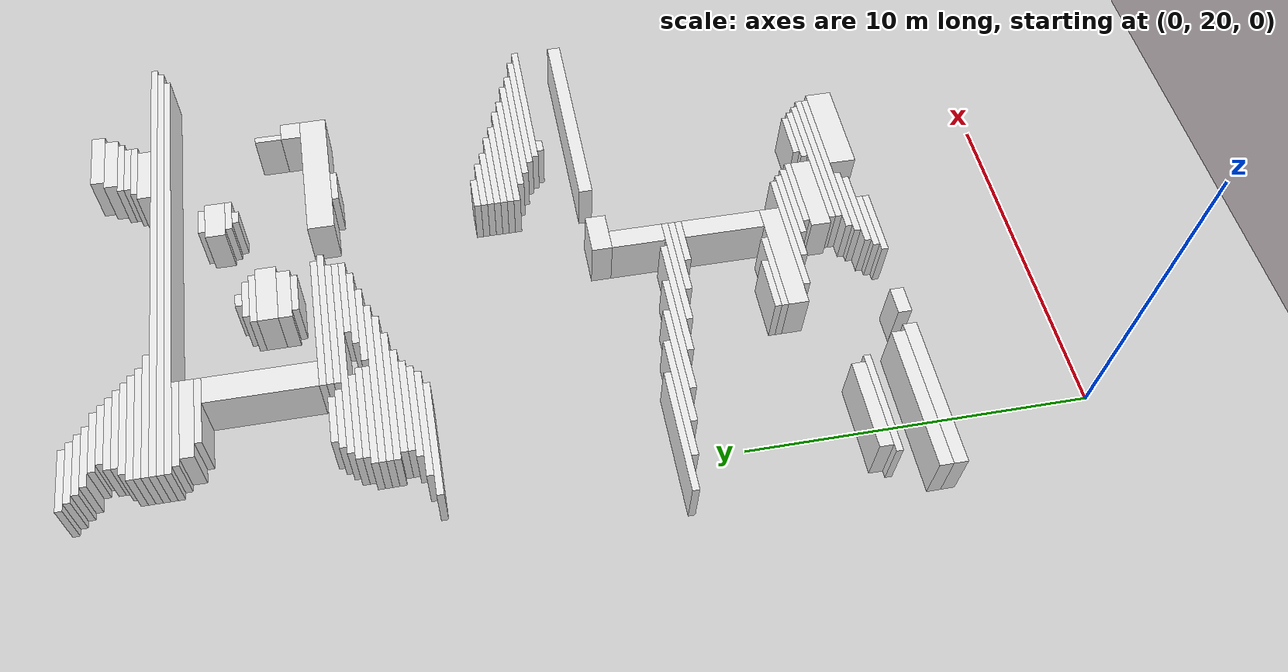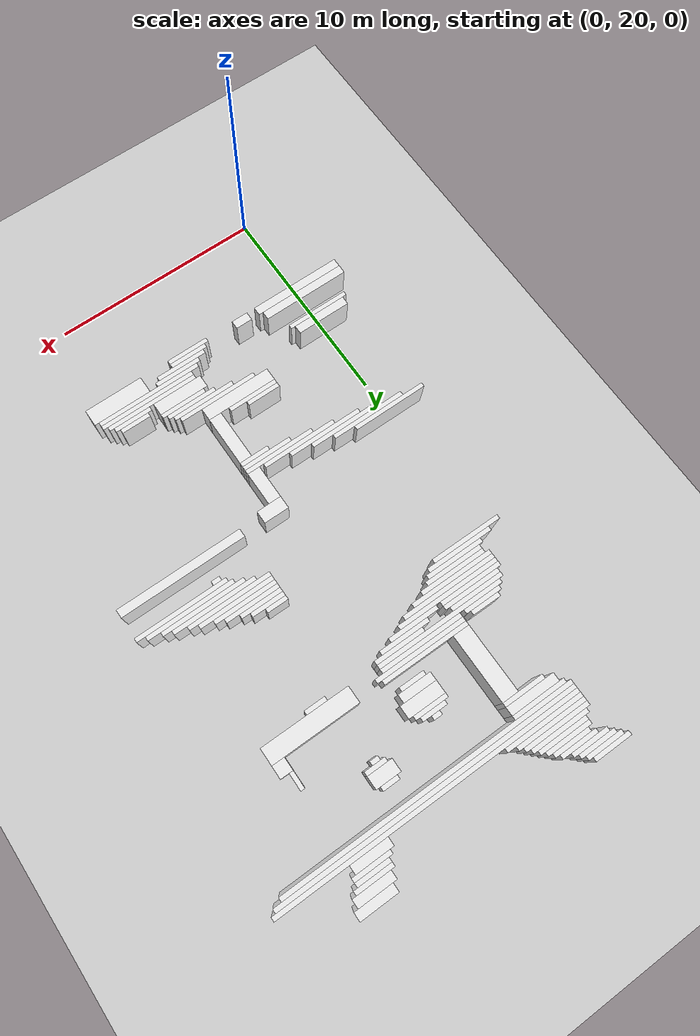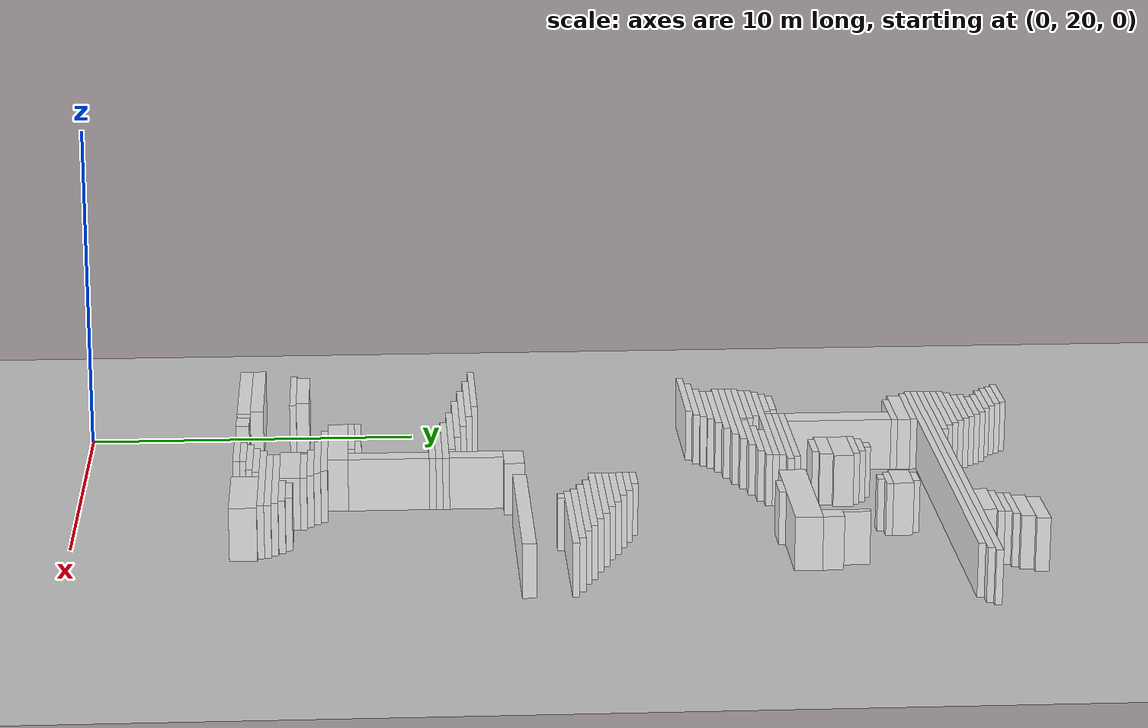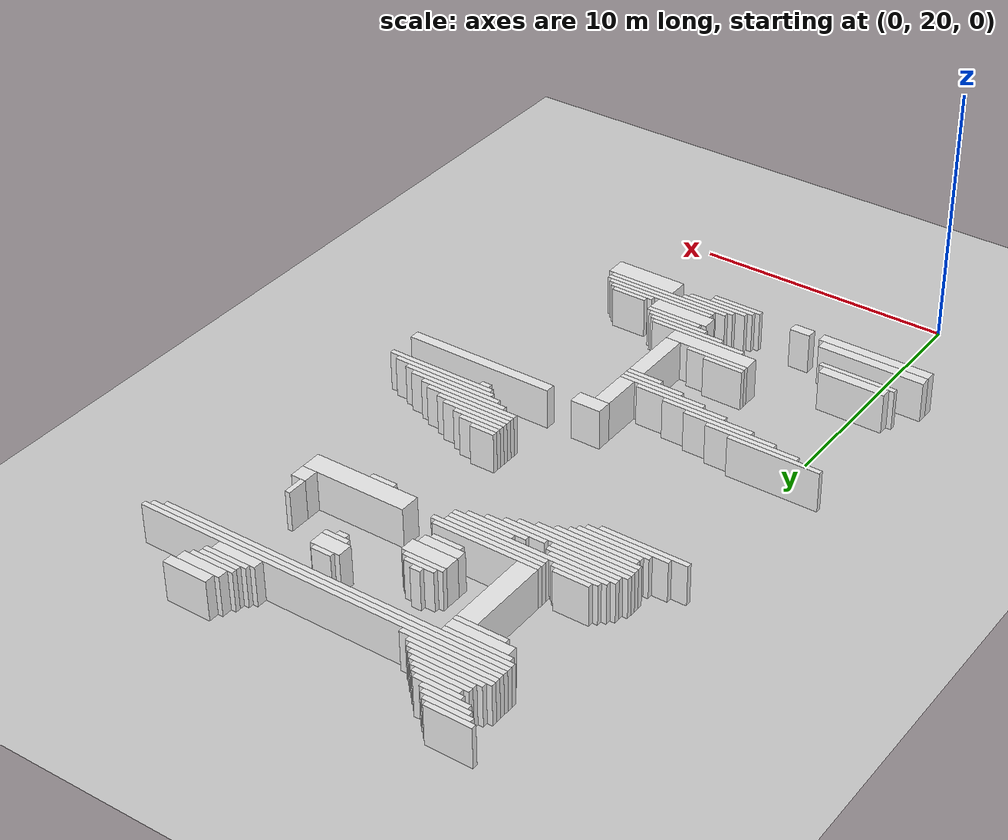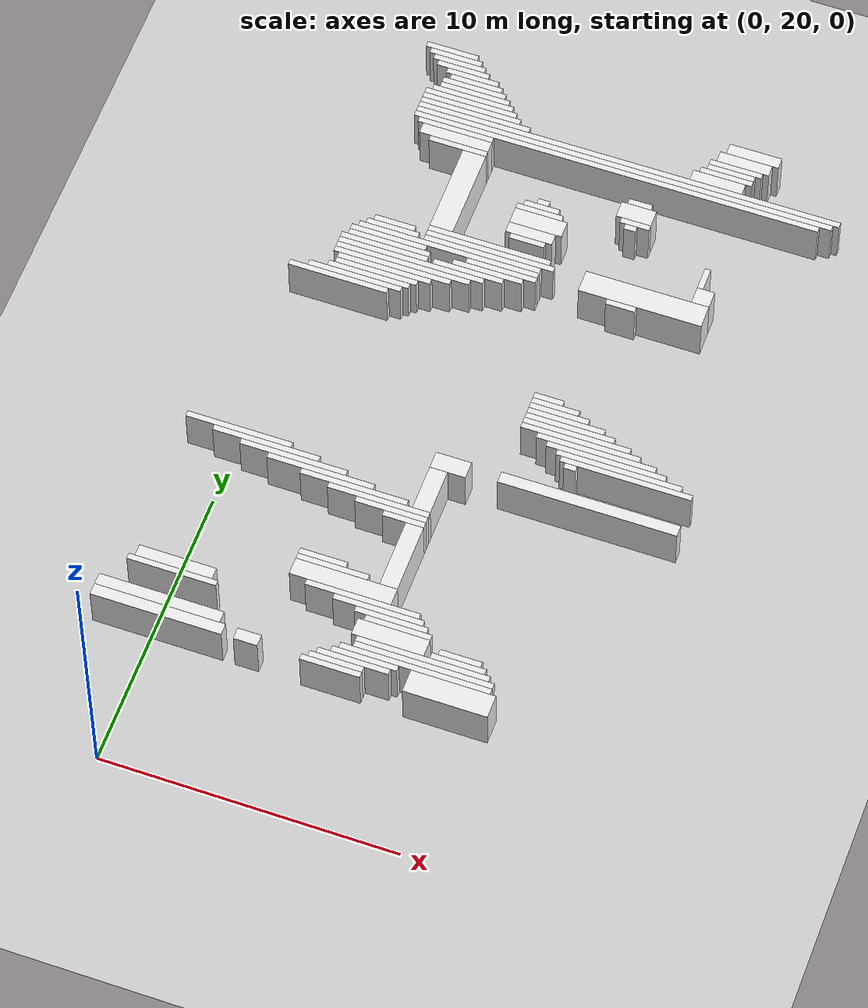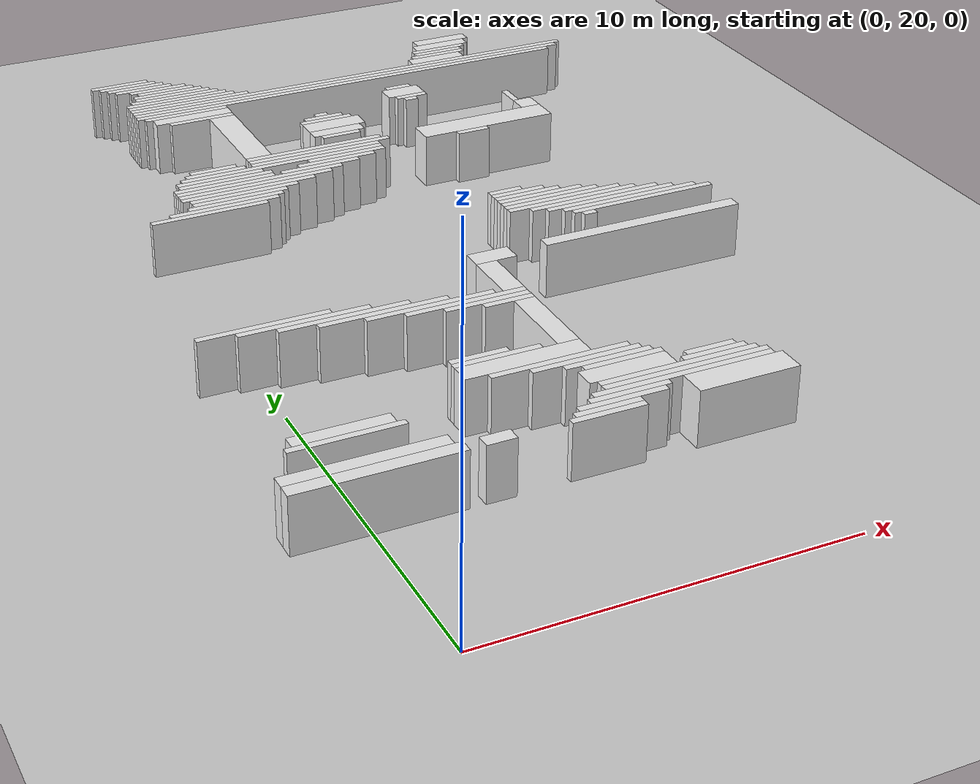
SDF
<sdf version="1.7">
 <world name="default">
  <model name="ground_plane">
   <static>1</static>
   <link name="link">
    <collision name="collision">
     <geometry><plane><normal>0 0 1</normal><size>120 120</size></plane></geometry>
    </collision>
    <visual name="visual">
     <geometry><plane><normal>0 0 1</normal><size>120 120</size></plane></geometry>
     <material>
      <script><uri>file://media/materials/scripts/gazebo.material</uri><name>Gazebo/Grey</name></script>
     </material>
    </visual>
   </link>
  </model>
  <model name="random_complex_02_model">
   <static>1</static>
   <link name="obs_3">
    <pose>1.5000 48.3000 0.8000 0 0 0</pose>
    <collision name="obs_3_col"><geometry><box><size>1.8000 0.2000 1.6000</size></box></geometry></collision>
    <visual name="obs_3_vis">
     <geometry><box><size>1.8000 0.2000 1.6000</size></box></geometry>
     <material>
      <script><uri>file://media/materials/scripts/gazebo.material</uri><name>Gazebo/White</name></script>
     </material>
    </visual>
   </link>
   <link name="obs_8">
    <pose>1.7000 48.1000 0.8000 0 0 0</pose>
    <collision name="obs_8_col"><geometry><box><size>1.8000 0.2000 1.6000</size></box></geometry></collision>
    <visual name="obs_8_vis">
     <geometry><box><size>1.8000 0.2000 1.6000</size></box></geometry>
     <material>
      <script><uri>file://media/materials/scripts/gazebo.material</uri><name>Gazebo/White</name></script>
     </material>
    </visual>
   </link>
   <link name="obs_15">
    <pose>1.9000 47.9000 0.8000 0 0 0</pose>
    <collision name="obs_15_col"><geometry><box><size>1.8000 0.2000 1.6000</size></box></geometry></collision>
    <visual name="obs_15_vis">
     <geometry><box><size>1.8000 0.2000 1.6000</size></box></geometry>
     <material>
      <script><uri>file://media/materials/scripts/gazebo.material</uri><name>Gazebo/White</name></script>
     </material>
    </visual>
   </link>
   <link name="obs_22">
    <pose>2.1000 47.7000 0.8000 0 0 0</pose>
    <collision name="obs_22_col"><geometry><box><size>1.8000 0.2000 1.6000</size></box></geometry></collision>
    <visual name="obs_22_vis">
     <geometry><box><size>1.8000 0.2000 1.6000</size></box></geometry>
     <material>
      <script><uri>file://media/materials/scripts/gazebo.material</uri><name>Gazebo/White</name></script>
     </material>
    </visual>
   </link>
   <link name="obs_25">
    <pose>12.3000 47.6000 0.8000 0 0 0</pose>
    <collision name="obs_25_col"><geometry><box><size>1.8000 0.4000 1.6000</size></box></geometry></collision>
    <visual name="obs_25_vis">
     <geometry><box><size>1.8000 0.4000 1.6000</size></box></geometry>
     <material>
      <script><uri>file://media/materials/scripts/gazebo.material</uri><name>Gazebo/White</name></script>
     </material>
    </visual>
   </link>
   <link name="obs_30">
    <pose>2.5000 47.5000 0.8000 0 0 0</pose>
    <collision name="obs_30_col"><geometry><box><size>1.8000 0.2000 1.6000</size></box></geometry></collision>
    <visual name="obs_30_vis">
     <geometry><box><size>1.8000 0.2000 1.6000</size></box></geometry>
     <material>
      <script><uri>file://media/materials/scripts/gazebo.material</uri><name>Gazebo/White</name></script>
     </material>
    </visual>
   </link>
   <link name="obs_37">
    <pose>2.7000 47.3000 0.8000 0 0 0</pose>
    <collision name="obs_37_col"><geometry><box><size>1.8000 0.2000 1.6000</size></box></geometry></collision>
    <visual name="obs_37_vis">
     <geometry><box><size>1.8000 0.2000 1.6000</size></box></geometry>
     <material>
      <script><uri>file://media/materials/scripts/gazebo.material</uri><name>Gazebo/White</name></script>
     </material>
    </visual>
   </link>
   <link name="obs_40">
    <pose>12.1000 47.2000 0.8000 0 0 0</pose>
    <collision name="obs_40_col"><geometry><box><size>1.8000 0.4000 1.6000</size></box></geometry></collision>
    <visual name="obs_40_vis">
     <geometry><box><size>1.8000 0.4000 1.6000</size></box></geometry>
     <material>
      <script><uri>file://media/materials/scripts/gazebo.material</uri><name>Gazebo/White</name></script>
     </material>
    </visual>
   </link>
   <link name="obs_44">
    <pose>2.7000 47.1000 0.8000 0 0 0</pose>
    <collision name="obs_44_col"><geometry><box><size>2.2000 0.2000 1.6000</size></box></geometry></collision>
    <visual name="obs_44_vis">
     <geometry><box><size>2.2000 0.2000 1.6000</size></box></geometry>
     <material>
      <script><uri>file://media/materials/scripts/gazebo.material</uri><name>Gazebo/White</name></script>
     </material>
    </visual>
   </link>
   <link name="obs_49">
    <pose>2.8000 46.9000 0.8000 0 0 0</pose>
    <collision name="obs_49_col"><geometry><box><size>2.4000 0.2000 1.6000</size></box></geometry></collision>
    <visual name="obs_49_vis">
     <geometry><box><size>2.4000 0.2000 1.6000</size></box></geometry>
     <material>
      <script><uri>file://media/materials/scripts/gazebo.material</uri><name>Gazebo/White</name></script>
     </material>
    </visual>
   </link>
   <link name="obs_50">
    <pose>11.9000 46.9000 0.8000 0 0 0</pose>
    <collision name="obs_50_col"><geometry><box><size>1.8000 0.2000 1.6000</size></box></geometry></collision>
    <visual name="obs_50_vis">
     <geometry><box><size>1.8000 0.2000 1.6000</size></box></geometry>
     <material>
      <script><uri>file://media/materials/scripts/gazebo.material</uri><name>Gazebo/White</name></script>
     </material>
    </visual>
   </link>
   <link name="obs_56">
    <pose>2.8000 46.7000 0.8000 0 0 0</pose>
    <collision name="obs_56_col"><geometry><box><size>2.8000 0.2000 1.6000</size></box></geometry></collision>
    <visual name="obs_56_vis">
     <geometry><box><size>2.8000 0.2000 1.6000</size></box></geometry>
     <material>
      <script><uri>file://media/materials/scripts/gazebo.material</uri><name>Gazebo/White</name></script>
     </material>
    </visual>
   </link>
   <link name="obs_57">
    <pose>11.8000 46.7000 0.8000 0 0 0</pose>
    <collision name="obs_57_col"><geometry><box><size>1.6000 0.2000 1.6000</size></box></geometry></collision>
    <visual name="obs_57_vis">
     <geometry><box><size>1.6000 0.2000 1.6000</size></box></geometry>
     <material>
      <script><uri>file://media/materials/scripts/gazebo.material</uri><name>Gazebo/White</name></script>
     </material>
    </visual>
   </link>
   <link name="obs_63">
    <pose>2.8000 46.5000 0.8000 0 0 0</pose>
    <collision name="obs_63_col"><geometry><box><size>3.2000 0.2000 1.6000</size></box></geometry></collision>
    <visual name="obs_63_vis">
     <geometry><box><size>3.2000 0.2000 1.6000</size></box></geometry>
     <material>
      <script><uri>file://media/materials/scripts/gazebo.material</uri><name>Gazebo/White</name></script>
     </material>
    </visual>
   </link>
   <link name="obs_64">
    <pose>11.7000 46.5000 0.8000 0 0 0</pose>
    <collision name="obs_64_col"><geometry><box><size>1.8000 0.2000 1.6000</size></box></geometry></collision>
    <visual name="obs_64_vis">
     <geometry><box><size>1.8000 0.2000 1.6000</size></box></geometry>
     <material>
      <script><uri>file://media/materials/scripts/gazebo.material</uri><name>Gazebo/White</name></script>
     </material>
    </visual>
   </link>
   <link name="obs_72">
    <pose>2.9000 46.3000 0.8000 0 0 0</pose>
    <collision name="obs_72_col"><geometry><box><size>3.4000 0.2000 1.6000</size></box></geometry></collision>
    <visual name="obs_72_vis">
     <geometry><box><size>3.4000 0.2000 1.6000</size></box></geometry>
     <material>
      <script><uri>file://media/materials/scripts/gazebo.material</uri><name>Gazebo/White</name></script>
     </material>
    </visual>
   </link>
   <link name="obs_76">
    <pose>11.5000 46.2000 0.8000 0 0 0</pose>
    <collision name="obs_76_col"><geometry><box><size>1.8000 0.4000 1.6000</size></box></geometry></collision>
    <visual name="obs_76_vis">
     <geometry><box><size>1.8000 0.4000 1.6000</size></box></geometry>
     <material>
      <script><uri>file://media/materials/scripts/gazebo.material</uri><name>Gazebo/White</name></script>
     </material>
    </visual>
   </link>
   <link name="obs_80">
    <pose>3.1000 46.1000 0.8000 0 0 0</pose>
    <collision name="obs_80_col"><geometry><box><size>3.8000 0.2000 1.6000</size></box></geometry></collision>
    <visual name="obs_80_vis">
     <geometry><box><size>3.8000 0.2000 1.6000</size></box></geometry>
     <material>
      <script><uri>file://media/materials/scripts/gazebo.material</uri><name>Gazebo/White</name></script>
     </material>
    </visual>
   </link>
   <link name="obs_89">
    <pose>8.5000 45.9000 0.8000 0 0 0</pose>
    <collision name="obs_89_col"><geometry><box><size>14.6000 0.2000 1.6000</size></box></geometry></collision>
    <visual name="obs_89_vis">
     <geometry><box><size>14.6000 0.2000 1.6000</size></box></geometry>
     <material>
      <script><uri>file://media/materials/scripts/gazebo.material</uri><name>Gazebo/White</name></script>
     </material>
    </visual>
   </link>
   <link name="obs_96">
    <pose>8.4000 45.7000 0.8000 0 0 0</pose>
    <collision name="obs_96_col"><geometry><box><size>14.4000 0.2000 1.6000</size></box></geometry></collision>
    <visual name="obs_96_vis">
     <geometry><box><size>14.4000 0.2000 1.6000</size></box></geometry>
     <material>
      <script><uri>file://media/materials/scripts/gazebo.material</uri><name>Gazebo/White</name></script>
     </material>
    </visual>
   </link>
   <link name="obs_103">
    <pose>8.2000 45.5000 0.8000 0 0 0</pose>
    <collision name="obs_103_col"><geometry><box><size>14.0000 0.2000 1.6000</size></box></geometry></collision>
    <visual name="obs_103_vis">
     <geometry><box><size>14.0000 0.2000 1.6000</size></box></geometry>
     <material>
      <script><uri>file://media/materials/scripts/gazebo.material</uri><name>Gazebo/White</name></script>
     </material>
    </visual>
   </link>
   <link name="obs_112">
    <pose>2.7000 45.3000 0.8000 0 0 0</pose>
    <collision name="obs_112_col"><geometry><box><size>2.6000 0.2000 1.6000</size></box></geometry></collision>
    <visual name="obs_112_vis">
     <geometry><box><size>2.6000 0.2000 1.6000</size></box></geometry>
     <material>
      <script><uri>file://media/materials/scripts/gazebo.material</uri><name>Gazebo/White</name></script>
     </material>
    </visual>
   </link>
   <link name="obs_127">
    <pose>2.8000 45.0000 0.8000 0 0 0</pose>
    <collision name="obs_127_col"><geometry><box><size>2.4000 0.4000 1.6000</size></box></geometry></collision>
    <visual name="obs_127_vis">
     <geometry><box><size>2.4000 0.4000 1.6000</size></box></geometry>
     <material>
      <script><uri>file://media/materials/scripts/gazebo.material</uri><name>Gazebo/White</name></script>
     </material>
    </visual>
   </link>
   <link name="obs_139">
    <pose>3.0000 44.7000 0.8000 0 0 0</pose>
    <collision name="obs_139_col"><geometry><box><size>2.0000 0.2000 1.6000</size></box></geometry></collision>
    <visual name="obs_139_vis">
     <geometry><box><size>2.0000 0.2000 1.6000</size></box></geometry>
     <material>
      <script><uri>file://media/materials/scripts/gazebo.material</uri><name>Gazebo/White</name></script>
     </material>
    </visual>
   </link>
   <link name="obs_147">
    <pose>9.4000 44.5000 0.8000 0 0 0</pose>
    <collision name="obs_147_col"><geometry><box><size>0.8000 0.2000 1.6000</size></box></geometry></collision>
    <visual name="obs_147_vis">
     <geometry><box><size>0.8000 0.2000 1.6000</size></box></geometry>
     <material>
      <script><uri>file://media/materials/scripts/gazebo.material</uri><name>Gazebo/White</name></script>
     </material>
    </visual>
   </link>
   <link name="obs_165">
    <pose>9.4000 44.1000 0.8000 0 0 0</pose>
    <collision name="obs_165_col"><geometry><box><size>1.2000 0.6000 1.6000</size></box></geometry></collision>
    <visual name="obs_165_vis">
     <geometry><box><size>1.2000 0.6000 1.6000</size></box></geometry>
     <material>
      <script><uri>file://media/materials/scripts/gazebo.material</uri><name>Gazebo/White</name></script>
     </material>
    </visual>
   </link>
   <link name="obs_178">
    <pose>9.5000 43.7000 0.8000 0 0 0</pose>
    <collision name="obs_178_col"><geometry><box><size>1.0000 0.2000 1.6000</size></box></geometry></collision>
    <visual name="obs_178_vis">
     <geometry><box><size>1.0000 0.2000 1.6000</size></box></geometry>
     <material>
      <script><uri>file://media/materials/scripts/gazebo.material</uri><name>Gazebo/White</name></script>
     </material>
    </visual>
   </link>
   <link name="obs_183">
    <pose>6.4000 43.5000 0.8000 0 0 0</pose>
    <collision name="obs_183_col"><geometry><box><size>0.4000 0.2000 1.6000</size></box></geometry></collision>
    <visual name="obs_183_vis">
     <geometry><box><size>0.4000 0.2000 1.6000</size></box></geometry>
     <material>
      <script><uri>file://media/materials/scripts/gazebo.material</uri><name>Gazebo/White</name></script>
     </material>
    </visual>
   </link>
   <link name="obs_184">
    <pose>9.4000 43.5000 0.8000 0 0 0</pose>
    <collision name="obs_184_col"><geometry><box><size>0.4000 0.2000 1.6000</size></box></geometry></collision>
    <visual name="obs_184_vis">
     <geometry><box><size>0.4000 0.2000 1.6000</size></box></geometry>
     <material>
      <script><uri>file://media/materials/scripts/gazebo.material</uri><name>Gazebo/White</name></script>
     </material>
    </visual>
   </link>
   <link name="obs_190">
    <pose>6.4000 43.3000 0.8000 0 0 0</pose>
    <collision name="obs_190_col"><geometry><box><size>1.2000 0.2000 1.6000</size></box></geometry></collision>
    <visual name="obs_190_vis">
     <geometry><box><size>1.2000 0.2000 1.6000</size></box></geometry>
     <material>
      <script><uri>file://media/materials/scripts/gazebo.material</uri><name>Gazebo/White</name></script>
     </material>
    </visual>
   </link>
   <link name="obs_198">
    <pose>6.4000 43.1000 0.8000 0 0 0</pose>
    <collision name="obs_198_col"><geometry><box><size>1.6000 0.2000 1.6000</size></box></geometry></collision>
    <visual name="obs_198_vis">
     <geometry><box><size>1.6000 0.2000 1.6000</size></box></geometry>
     <material>
      <script><uri>file://media/materials/scripts/gazebo.material</uri><name>Gazebo/White</name></script>
     </material>
    </visual>
   </link>
   <link name="obs_213">
    <pose>6.5000 42.7000 0.8000 0 0 0</pose>
    <collision name="obs_213_col"><geometry><box><size>1.8000 0.6000 1.6000</size></box></geometry></collision>
    <visual name="obs_213_vis">
     <geometry><box><size>1.8000 0.6000 1.6000</size></box></geometry>
     <material>
      <script><uri>file://media/materials/scripts/gazebo.material</uri><name>Gazebo/White</name></script>
     </material>
    </visual>
   </link>
   <link name="obs_227">
    <pose>12.3000 42.4000 0.8000 0 0 0</pose>
    <collision name="obs_227_col"><geometry><box><size>0.2000 0.8000 1.6000</size></box></geometry></collision>
    <visual name="obs_227_vis">
     <geometry><box><size>0.2000 0.8000 1.6000</size></box></geometry>
     <material>
      <script><uri>file://media/materials/scripts/gazebo.material</uri><name>Gazebo/White</name></script>
     </material>
    </visual>
   </link>
   <link name="obs_229">
    <pose>6.4000 42.2000 0.8000 0 0 0</pose>
    <collision name="obs_229_col"><geometry><box><size>1.6000 0.4000 1.6000</size></box></geometry></collision>
    <visual name="obs_229_vis">
     <geometry><box><size>1.6000 0.4000 1.6000</size></box></geometry>
     <material>
      <script><uri>file://media/materials/scripts/gazebo.material</uri><name>Gazebo/White</name></script>
     </material>
    </visual>
   </link>
   <link name="obs_240">
    <pose>6.4000 41.9000 0.8000 0 0 0</pose>
    <collision name="obs_240_col"><geometry><box><size>1.2000 0.2000 1.6000</size></box></geometry></collision>
    <visual name="obs_240_vis">
     <geometry><box><size>1.2000 0.2000 1.6000</size></box></geometry>
     <material>
      <script><uri>file://media/materials/scripts/gazebo.material</uri><name>Gazebo/White</name></script>
     </material>
    </visual>
   </link>
   <link name="obs_248">
    <pose>3.6000 43.0000 0.8000 0 0 0</pose>
    <collision name="obs_248_col"><geometry><box><size>0.8000 3.2000 1.6000</size></box></geometry></collision>
    <visual name="obs_248_vis">
     <geometry><box><size>0.8000 3.2000 1.6000</size></box></geometry>
     <material>
      <script><uri>file://media/materials/scripts/gazebo.material</uri><name>Gazebo/White</name></script>
     </material>
    </visual>
   </link>
   <link name="obs_250">
    <pose>12.5000 41.7000 0.8000 0 0 0</pose>
    <collision name="obs_250_col"><geometry><box><size>0.6000 0.6000 1.6000</size></box></geometry></collision>
    <visual name="obs_250_vis">
     <geometry><box><size>0.6000 0.6000 1.6000</size></box></geometry>
     <material>
      <script><uri>file://media/materials/scripts/gazebo.material</uri><name>Gazebo/White</name></script>
     </material>
    </visual>
   </link>
   <link name="obs_268">
    <pose>5.3000 41.3000 0.8000 0 0 0</pose>
    <collision name="obs_268_col"><geometry><box><size>4.2000 0.2000 1.6000</size></box></geometry></collision>
    <visual name="obs_268_vis">
     <geometry><box><size>4.2000 0.2000 1.6000</size></box></geometry>
     <material>
      <script><uri>file://media/materials/scripts/gazebo.material</uri><name>Gazebo/White</name></script>
     </material>
    </visual>
   </link>
   <link name="obs_275">
    <pose>2.1000 41.1000 0.8000 0 0 0</pose>
    <collision name="obs_275_col"><geometry><box><size>1.4000 0.2000 1.6000</size></box></geometry></collision>
    <visual name="obs_275_vis">
     <geometry><box><size>1.4000 0.2000 1.6000</size></box></geometry>
     <material>
      <script><uri>file://media/materials/scripts/gazebo.material</uri><name>Gazebo/White</name></script>
     </material>
    </visual>
   </link>
   <link name="obs_276">
    <pose>5.4000 41.1000 0.8000 0 0 0</pose>
    <collision name="obs_276_col"><geometry><box><size>4.4000 0.2000 1.6000</size></box></geometry></collision>
    <visual name="obs_276_vis">
     <geometry><box><size>4.4000 0.2000 1.6000</size></box></geometry>
     <material>
      <script><uri>file://media/materials/scripts/gazebo.material</uri><name>Gazebo/White</name></script>
     </material>
    </visual>
   </link>
   <link name="obs_284">
    <pose>2.1000 40.9000 0.8000 0 0 0</pose>
    <collision name="obs_284_col"><geometry><box><size>1.8000 0.2000 1.6000</size></box></geometry></collision>
    <visual name="obs_284_vis">
     <geometry><box><size>1.8000 0.2000 1.6000</size></box></geometry>
     <material>
      <script><uri>file://media/materials/scripts/gazebo.material</uri><name>Gazebo/White</name></script>
     </material>
    </visual>
   </link>
   <link name="obs_285">
    <pose>5.2000 40.9000 0.8000 0 0 0</pose>
    <collision name="obs_285_col"><geometry><box><size>4.0000 0.2000 1.6000</size></box></geometry></collision>
    <visual name="obs_285_vis">
     <geometry><box><size>4.0000 0.2000 1.6000</size></box></geometry>
     <material>
      <script><uri>file://media/materials/scripts/gazebo.material</uri><name>Gazebo/White</name></script>
     </material>
    </visual>
   </link>
   <link name="obs_288">
    <pose>10.7000 41.0000 0.8000 0 0 0</pose>
    <collision name="obs_288_col"><geometry><box><size>4.2000 0.8000 1.6000</size></box></geometry></collision>
    <visual name="obs_288_vis">
     <geometry><box><size>4.2000 0.8000 1.6000</size></box></geometry>
     <material>
      <script><uri>file://media/materials/scripts/gazebo.material</uri><name>Gazebo/White</name></script>
     </material>
    </visual>
   </link>
   <link name="obs_294">
    <pose>4.1000 40.7000 0.8000 0 0 0</pose>
    <collision name="obs_294_col"><geometry><box><size>6.2000 0.2000 1.6000</size></box></geometry></collision>
    <visual name="obs_294_vis">
     <geometry><box><size>6.2000 0.2000 1.6000</size></box></geometry>
     <material>
      <script><uri>file://media/materials/scripts/gazebo.material</uri><name>Gazebo/White</name></script>
     </material>
    </visual>
   </link>
   <link name="obs_304">
    <pose>2.1000 40.5000 0.8000 0 0 0</pose>
    <collision name="obs_304_col"><geometry><box><size>2.6000 0.2000 1.6000</size></box></geometry></collision>
    <visual name="obs_304_vis">
     <geometry><box><size>2.6000 0.2000 1.6000</size></box></geometry>
     <material>
      <script><uri>file://media/materials/scripts/gazebo.material</uri><name>Gazebo/White</name></script>
     </material>
    </visual>
   </link>
   <link name="obs_305">
    <pose>6.0000 40.5000 0.8000 0 0 0</pose>
    <collision name="obs_305_col"><geometry><box><size>2.4000 0.2000 1.6000</size></box></geometry></collision>
    <visual name="obs_305_vis">
     <geometry><box><size>2.4000 0.2000 1.6000</size></box></geometry>
     <material>
      <script><uri>file://media/materials/scripts/gazebo.material</uri><name>Gazebo/White</name></script>
     </material>
    </visual>
   </link>
   <link name="obs_306">
    <pose>10.1000 40.5000 0.8000 0 0 0</pose>
    <collision name="obs_306_col"><geometry><box><size>1.0000 0.2000 1.6000</size></box></geometry></collision>
    <visual name="obs_306_vis">
     <geometry><box><size>1.0000 0.2000 1.6000</size></box></geometry>
     <material>
      <script><uri>file://media/materials/scripts/gazebo.material</uri><name>Gazebo/White</name></script>
     </material>
    </visual>
   </link>
   <link name="obs_313">
    <pose>2.2000 40.3000 0.8000 0 0 0</pose>
    <collision name="obs_313_col"><geometry><box><size>2.8000 0.2000 1.6000</size></box></geometry></collision>
    <visual name="obs_313_vis">
     <geometry><box><size>2.8000 0.2000 1.6000</size></box></geometry>
     <material>
      <script><uri>file://media/materials/scripts/gazebo.material</uri><name>Gazebo/White</name></script>
     </material>
    </visual>
   </link>
   <link name="obs_314">
    <pose>5.6000 40.3000 0.8000 0 0 0</pose>
    <collision name="obs_314_col"><geometry><box><size>2.4000 0.2000 1.6000</size></box></geometry></collision>
    <visual name="obs_314_vis">
     <geometry><box><size>2.4000 0.2000 1.6000</size></box></geometry>
     <material>
      <script><uri>file://media/materials/scripts/gazebo.material</uri><name>Gazebo/White</name></script>
     </material>
    </visual>
   </link>
   <link name="obs_325">
    <pose>2.1000 40.1000 0.8000 0 0 0</pose>
    <collision name="obs_325_col"><geometry><box><size>3.0000 0.2000 1.6000</size></box></geometry></collision>
    <visual name="obs_325_vis">
     <geometry><box><size>3.0000 0.2000 1.6000</size></box></geometry>
     <material>
      <script><uri>file://media/materials/scripts/gazebo.material</uri><name>Gazebo/White</name></script>
     </material>
    </visual>
   </link>
   <link name="obs_326">
    <pose>5.0000 40.1000 0.8000 0 0 0</pose>
    <collision name="obs_326_col"><geometry><box><size>2.4000 0.2000 1.6000</size></box></geometry></collision>
    <visual name="obs_326_vis">
     <geometry><box><size>2.4000 0.2000 1.6000</size></box></geometry>
     <material>
      <script><uri>file://media/materials/scripts/gazebo.material</uri><name>Gazebo/White</name></script>
     </material>
    </visual>
   </link>
   <link name="obs_335">
    <pose>3.1000 39.9000 0.8000 0 0 0</pose>
    <collision name="obs_335_col"><geometry><box><size>5.0000 0.2000 1.6000</size></box></geometry></collision>
    <visual name="obs_335_vis">
     <geometry><box><size>5.0000 0.2000 1.6000</size></box></geometry>
     <material>
      <script><uri>file://media/materials/scripts/gazebo.material</uri><name>Gazebo/White</name></script>
     </material>
    </visual>
   </link>
   <link name="obs_341">
    <pose>2.9000 39.7000 0.8000 0 0 0</pose>
    <collision name="obs_341_col"><geometry><box><size>4.6000 0.2000 1.6000</size></box></geometry></collision>
    <visual name="obs_341_vis">
     <geometry><box><size>4.6000 0.2000 1.6000</size></box></geometry>
     <material>
      <script><uri>file://media/materials/scripts/gazebo.material</uri><name>Gazebo/White</name></script>
     </material>
    </visual>
   </link>
   <link name="obs_349">
    <pose>2.6000 39.5000 0.8000 0 0 0</pose>
    <collision name="obs_349_col"><geometry><box><size>4.0000 0.2000 1.6000</size></box></geometry></collision>
    <visual name="obs_349_vis">
     <geometry><box><size>4.0000 0.2000 1.6000</size></box></geometry>
     <material>
      <script><uri>file://media/materials/scripts/gazebo.material</uri><name>Gazebo/White</name></script>
     </material>
    </visual>
   </link>
   <link name="obs_359">
    <pose>2.4000 39.3000 0.8000 0 0 0</pose>
    <collision name="obs_359_col"><geometry><box><size>3.2000 0.2000 1.6000</size></box></geometry></collision>
    <visual name="obs_359_vis">
     <geometry><box><size>3.2000 0.2000 1.6000</size></box></geometry>
     <material>
      <script><uri>file://media/materials/scripts/gazebo.material</uri><name>Gazebo/White</name></script>
     </material>
    </visual>
   </link>
   <link name="obs_366">
    <pose>2.2000 39.1000 0.8000 0 0 0</pose>
    <collision name="obs_366_col"><geometry><box><size>2.8000 0.2000 1.6000</size></box></geometry></collision>
    <visual name="obs_366_vis">
     <geometry><box><size>2.8000 0.2000 1.6000</size></box></geometry>
     <material>
      <script><uri>file://media/materials/scripts/gazebo.material</uri><name>Gazebo/White</name></script>
     </material>
    </visual>
   </link>
   <link name="obs_376">
    <pose>2.0000 38.9000 0.8000 0 0 0</pose>
    <collision name="obs_376_col"><geometry><box><size>2.8000 0.2000 1.6000</size></box></geometry></collision>
    <visual name="obs_376_vis">
     <geometry><box><size>2.8000 0.2000 1.6000</size></box></geometry>
     <material>
      <script><uri>file://media/materials/scripts/gazebo.material</uri><name>Gazebo/White</name></script>
     </material>
    </visual>
   </link>
   <link name="obs_386">
    <pose>1.6000 38.7000 0.8000 0 0 0</pose>
    <collision name="obs_386_col"><geometry><box><size>3.2000 0.2000 1.6000</size></box></geometry></collision>
    <visual name="obs_386_vis">
     <geometry><box><size>3.2000 0.2000 1.6000</size></box></geometry>
     <material>
      <script><uri>file://media/materials/scripts/gazebo.material</uri><name>Gazebo/White</name></script>
     </material>
    </visual>
   </link>
   <link name="obs_395">
    <pose>1.1000 38.5000 0.8000 0 0 0</pose>
    <collision name="obs_395_col"><geometry><box><size>3.4000 0.2000 1.6000</size></box></geometry></collision>
    <visual name="obs_395_vis">
     <geometry><box><size>3.4000 0.2000 1.6000</size></box></geometry>
     <material>
      <script><uri>file://media/materials/scripts/gazebo.material</uri><name>Gazebo/White</name></script>
     </material>
    </visual>
   </link>
   <link name="obs_484">
    <pose>9.1000 36.3000 0.8000 0 0 0</pose>
    <collision name="obs_484_col"><geometry><box><size>1.0000 0.2000 1.6000</size></box></geometry></collision>
    <visual name="obs_484_vis">
     <geometry><box><size>1.0000 0.2000 1.6000</size></box></geometry>
     <material>
      <script><uri>file://media/materials/scripts/gazebo.material</uri><name>Gazebo/White</name></script>
     </material>
    </visual>
   </link>
   <link name="obs_494">
    <pose>9.4000 36.1000 0.8000 0 0 0</pose>
    <collision name="obs_494_col"><geometry><box><size>1.6000 0.2000 1.6000</size></box></geometry></collision>
    <visual name="obs_494_vis">
     <geometry><box><size>1.6000 0.2000 1.6000</size></box></geometry>
     <material>
      <script><uri>file://media/materials/scripts/gazebo.material</uri><name>Gazebo/White</name></script>
     </material>
    </visual>
   </link>
   <link name="obs_504">
    <pose>9.6000 35.9000 0.8000 0 0 0</pose>
    <collision name="obs_504_col"><geometry><box><size>2.0000 0.2000 1.6000</size></box></geometry></collision>
    <visual name="obs_504_vis">
     <geometry><box><size>2.0000 0.2000 1.6000</size></box></geometry>
     <material>
      <script><uri>file://media/materials/scripts/gazebo.material</uri><name>Gazebo/White</name></script>
     </material>
    </visual>
   </link>
   <link name="obs_515">
    <pose>9.9000 35.7000 0.8000 0 0 0</pose>
    <collision name="obs_515_col"><geometry><box><size>2.6000 0.2000 1.6000</size></box></geometry></collision>
    <visual name="obs_515_vis">
     <geometry><box><size>2.6000 0.2000 1.6000</size></box></geometry>
     <material>
      <script><uri>file://media/materials/scripts/gazebo.material</uri><name>Gazebo/White</name></script>
     </material>
    </visual>
   </link>
   <link name="obs_521">
    <pose>10.1000 35.5000 0.8000 0 0 0</pose>
    <collision name="obs_521_col"><geometry><box><size>3.0000 0.2000 1.6000</size></box></geometry></collision>
    <visual name="obs_521_vis">
     <geometry><box><size>3.0000 0.2000 1.6000</size></box></geometry>
     <material>
      <script><uri>file://media/materials/scripts/gazebo.material</uri><name>Gazebo/White</name></script>
     </material>
    </visual>
   </link>
   <link name="obs_532">
    <pose>10.4000 35.3000 0.8000 0 0 0</pose>
    <collision name="obs_532_col"><geometry><box><size>3.6000 0.2000 1.6000</size></box></geometry></collision>
    <visual name="obs_532_vis">
     <geometry><box><size>3.6000 0.2000 1.6000</size></box></geometry>
     <material>
      <script><uri>file://media/materials/scripts/gazebo.material</uri><name>Gazebo/White</name></script>
     </material>
    </visual>
   </link>
   <link name="obs_540">
    <pose>10.6000 35.1000 0.8000 0 0 0</pose>
    <collision name="obs_540_col"><geometry><box><size>4.0000 0.2000 1.6000</size></box></geometry></collision>
    <visual name="obs_540_vis">
     <geometry><box><size>4.0000 0.2000 1.6000</size></box></geometry>
     <material>
      <script><uri>file://media/materials/scripts/gazebo.material</uri><name>Gazebo/White</name></script>
     </material>
    </visual>
   </link>
   <link name="obs_549">
    <pose>11.2000 34.9000 0.8000 0 0 0</pose>
    <collision name="obs_549_col"><geometry><box><size>4.0000 0.2000 1.6000</size></box></geometry></collision>
    <visual name="obs_549_vis">
     <geometry><box><size>4.0000 0.2000 1.6000</size></box></geometry>
     <material>
      <script><uri>file://media/materials/scripts/gazebo.material</uri><name>Gazebo/White</name></script>
     </material>
    </visual>
   </link>
   <link name="obs_558">
    <pose>11.6000 34.7000 0.8000 0 0 0</pose>
    <collision name="obs_558_col"><geometry><box><size>4.0000 0.2000 1.6000</size></box></geometry></collision>
    <visual name="obs_558_vis">
     <geometry><box><size>4.0000 0.2000 1.6000</size></box></geometry>
     <material>
      <script><uri>file://media/materials/scripts/gazebo.material</uri><name>Gazebo/White</name></script>
     </material>
    </visual>
   </link>
   <link name="obs_566">
    <pose>12.1000 34.5000 0.8000 0 0 0</pose>
    <collision name="obs_566_col"><geometry><box><size>4.2000 0.2000 1.6000</size></box></geometry></collision>
    <visual name="obs_566_vis">
     <geometry><box><size>4.2000 0.2000 1.6000</size></box></geometry>
     <material>
      <script><uri>file://media/materials/scripts/gazebo.material</uri><name>Gazebo/White</name></script>
     </material>
    </visual>
   </link>
   <link name="obs_574">
    <pose>12.4000 34.3000 0.8000 0 0 0</pose>
    <collision name="obs_574_col"><geometry><box><size>4.4000 0.2000 1.6000</size></box></geometry></collision>
    <visual name="obs_574_vis">
     <geometry><box><size>4.4000 0.2000 1.6000</size></box></geometry>
     <material>
      <script><uri>file://media/materials/scripts/gazebo.material</uri><name>Gazebo/White</name></script>
     </material>
    </visual>
   </link>
   <link name="obs_583">
    <pose>10.6000 34.1000 0.8000 0 0 0</pose>
    <collision name="obs_583_col"><geometry><box><size>0.4000 0.2000 1.6000</size></box></geometry></collision>
    <visual name="obs_583_vis">
     <geometry><box><size>0.4000 0.2000 1.6000</size></box></geometry>
     <material>
      <script><uri>file://media/materials/scripts/gazebo.material</uri><name>Gazebo/White</name></script>
     </material>
    </visual>
   </link>
   <link name="obs_634">
    <pose>11.6000 33.0000 0.8000 0 0 0</pose>
    <collision name="obs_634_col"><geometry><box><size>6.0000 0.4000 1.6000</size></box></geometry></collision>
    <visual name="obs_634_vis">
     <geometry><box><size>6.0000 0.4000 1.6000</size></box></geometry>
     <material>
      <script><uri>file://media/materials/scripts/gazebo.material</uri><name>Gazebo/White</name></script>
     </material>
    </visual>
   </link>
   <link name="obs_643">
    <pose>7.0000 32.9000 0.8000 0 0 0</pose>
    <collision name="obs_643_col"><geometry><box><size>1.2000 0.6000 1.6000</size></box></geometry></collision>
    <visual name="obs_643_vis">
     <geometry><box><size>1.2000 0.6000 1.6000</size></box></geometry>
     <material>
      <script><uri>file://media/materials/scripts/gazebo.material</uri><name>Gazebo/White</name></script>
     </material>
    </visual>
   </link>
   <link name="obs_683">
    <pose>0.2000 31.9000 0.8000 0 0 0</pose>
    <collision name="obs_683_col"><geometry><box><size>3.6000 0.2000 1.6000</size></box></geometry></collision>
    <visual name="obs_683_vis">
     <geometry><box><size>3.6000 0.2000 1.6000</size></box></geometry>
     <material>
      <script><uri>file://media/materials/scripts/gazebo.material</uri><name>Gazebo/White</name></script>
     </material>
    </visual>
   </link>
   <link name="obs_693">
    <pose>1.2000 31.7000 0.8000 0 0 0</pose>
    <collision name="obs_693_col"><geometry><box><size>3.6000 0.2000 1.6000</size></box></geometry></collision>
    <visual name="obs_693_vis">
     <geometry><box><size>3.6000 0.2000 1.6000</size></box></geometry>
     <material>
      <script><uri>file://media/materials/scripts/gazebo.material</uri><name>Gazebo/White</name></script>
     </material>
    </visual>
   </link>
   <link name="obs_704">
    <pose>2.2000 31.5000 0.8000 0 0 0</pose>
    <collision name="obs_704_col"><geometry><box><size>3.6000 0.2000 1.6000</size></box></geometry></collision>
    <visual name="obs_704_vis">
     <geometry><box><size>3.6000 0.2000 1.6000</size></box></geometry>
     <material>
      <script><uri>file://media/materials/scripts/gazebo.material</uri><name>Gazebo/White</name></script>
     </material>
    </visual>
   </link>
   <link name="obs_712">
    <pose>3.2000 31.3000 0.8000 0 0 0</pose>
    <collision name="obs_712_col"><geometry><box><size>3.6000 0.2000 1.6000</size></box></geometry></collision>
    <visual name="obs_712_vis">
     <geometry><box><size>3.6000 0.2000 1.6000</size></box></geometry>
     <material>
      <script><uri>file://media/materials/scripts/gazebo.material</uri><name>Gazebo/White</name></script>
     </material>
    </visual>
   </link>
   <link name="obs_718">
    <pose>6.7000 31.8000 0.8000 0 0 0</pose>
    <collision name="obs_718_col"><geometry><box><size>0.6000 1.6000 1.6000</size></box></geometry></collision>
    <visual name="obs_718_vis">
     <geometry><box><size>0.6000 1.6000 1.6000</size></box></geometry>
     <material>
      <script><uri>file://media/materials/scripts/gazebo.material</uri><name>Gazebo/White</name></script>
     </material>
    </visual>
   </link>
   <link name="obs_725">
    <pose>4.4000 31.1000 0.8000 0 0 0</pose>
    <collision name="obs_725_col"><geometry><box><size>3.6000 0.2000 1.6000</size></box></geometry></collision>
    <visual name="obs_725_vis">
     <geometry><box><size>3.6000 0.2000 1.6000</size></box></geometry>
     <material>
      <script><uri>file://media/materials/scripts/gazebo.material</uri><name>Gazebo/White</name></script>
     </material>
    </visual>
   </link>
   <link name="obs_734">
    <pose>5.3000 30.9000 0.8000 0 0 0</pose>
    <collision name="obs_734_col"><geometry><box><size>3.4000 0.2000 1.6000</size></box></geometry></collision>
    <visual name="obs_734_vis">
     <geometry><box><size>3.4000 0.2000 1.6000</size></box></geometry>
     <material>
      <script><uri>file://media/materials/scripts/gazebo.material</uri><name>Gazebo/White</name></script>
     </material>
    </visual>
   </link>
   <link name="obs_746">
    <pose>5.8000 30.7000 0.8000 0 0 0</pose>
    <collision name="obs_746_col"><geometry><box><size>2.4000 0.2000 1.6000</size></box></geometry></collision>
    <visual name="obs_746_vis">
     <geometry><box><size>2.4000 0.2000 1.6000</size></box></geometry>
     <material>
      <script><uri>file://media/materials/scripts/gazebo.material</uri><name>Gazebo/White</name></script>
     </material>
    </visual>
   </link>
   <link name="obs_755">
    <pose>6.3000 30.5000 0.8000 0 0 0</pose>
    <collision name="obs_755_col"><geometry><box><size>1.4000 0.2000 1.6000</size></box></geometry></collision>
    <visual name="obs_755_vis">
     <geometry><box><size>1.4000 0.2000 1.6000</size></box></geometry>
     <material>
      <script><uri>file://media/materials/scripts/gazebo.material</uri><name>Gazebo/White</name></script>
     </material>
    </visual>
   </link>
   <link name="obs_853">
    <pose>4.4000 28.3000 0.8000 0 0 0</pose>
    <collision name="obs_853_col"><geometry><box><size>1.6000 0.2000 1.6000</size></box></geometry></collision>
    <visual name="obs_853_vis">
     <geometry><box><size>1.6000 0.2000 1.6000</size></box></geometry>
     <material>
      <script><uri>file://media/materials/scripts/gazebo.material</uri><name>Gazebo/White</name></script>
     </material>
    </visual>
   </link>
   <link name="obs_857">
    <pose>6.7000 29.2000 0.8000 0 0 0</pose>
    <collision name="obs_857_col"><geometry><box><size>0.6000 2.4000 1.6000</size></box></geometry></collision>
    <visual name="obs_857_vis">
     <geometry><box><size>0.6000 2.4000 1.6000</size></box></geometry>
     <material>
      <script><uri>file://media/materials/scripts/gazebo.material</uri><name>Gazebo/White</name></script>
     </material>
    </visual>
   </link>
   <link name="obs_860">
    <pose>4.8000 28.1000 0.8000 0 0 0</pose>
    <collision name="obs_860_col"><geometry><box><size>2.4000 0.2000 1.6000</size></box></geometry></collision>
    <visual name="obs_860_vis">
     <geometry><box><size>2.4000 0.2000 1.6000</size></box></geometry>
     <material>
      <script><uri>file://media/materials/scripts/gazebo.material</uri><name>Gazebo/White</name></script>
     </material>
    </visual>
   </link>
   <link name="obs_885">
    <pose>5.3000 27.7000 0.8000 0 0 0</pose>
    <collision name="obs_885_col"><geometry><box><size>3.4000 0.6000 1.6000</size></box></geometry></collision>
    <visual name="obs_885_vis">
     <geometry><box><size>3.4000 0.6000 1.6000</size></box></geometry>
     <material>
      <script><uri>file://media/materials/scripts/gazebo.material</uri><name>Gazebo/White</name></script>
     </material>
    </visual>
   </link>
   <link name="obs_896">
    <pose>6.1000 27.3000 0.8000 0 0 0</pose>
    <collision name="obs_896_col"><geometry><box><size>3.8000 0.2000 1.6000</size></box></geometry></collision>
    <visual name="obs_896_vis">
     <geometry><box><size>3.8000 0.2000 1.6000</size></box></geometry>
     <material>
      <script><uri>file://media/materials/scripts/gazebo.material</uri><name>Gazebo/White</name></script>
     </material>
    </visual>
   </link>
   <link name="obs_903">
    <pose>6.7000 27.1000 0.8000 0 0 0</pose>
    <collision name="obs_903_col"><geometry><box><size>3.0000 0.2000 1.6000</size></box></geometry></collision>
    <visual name="obs_903_vis">
     <geometry><box><size>3.0000 0.2000 1.6000</size></box></geometry>
     <material>
      <script><uri>file://media/materials/scripts/gazebo.material</uri><name>Gazebo/White</name></script>
     </material>
    </visual>
   </link>
   <link name="obs_913">
    <pose>7.2000 26.9000 0.8000 0 0 0</pose>
    <collision name="obs_913_col"><geometry><box><size>2.4000 0.2000 1.6000</size></box></geometry></collision>
    <visual name="obs_913_vis">
     <geometry><box><size>2.4000 0.2000 1.6000</size></box></geometry>
     <material>
      <script><uri>file://media/materials/scripts/gazebo.material</uri><name>Gazebo/White</name></script>
     </material>
    </visual>
   </link>
   <link name="obs_919">
    <pose>7.5000 26.7000 0.8000 0 0 0</pose>
    <collision name="obs_919_col"><geometry><box><size>2.2000 0.2000 1.6000</size></box></geometry></collision>
    <visual name="obs_919_vis">
     <geometry><box><size>2.2000 0.2000 1.6000</size></box></geometry>
     <material>
      <script><uri>file://media/materials/scripts/gazebo.material</uri><name>Gazebo/White</name></script>
     </material>
    </visual>
   </link>
   <link name="obs_922">
    <pose>0.1000 26.6000 0.8000 0 0 0</pose>
    <collision name="obs_922_col"><geometry><box><size>2.6000 0.4000 1.6000</size></box></geometry></collision>
    <visual name="obs_922_vis">
     <geometry><box><size>2.6000 0.4000 1.6000</size></box></geometry>
     <material>
      <script><uri>file://media/materials/scripts/gazebo.material</uri><name>Gazebo/White</name></script>
     </material>
    </visual>
   </link>
   <link name="obs_932">
    <pose>0.1000 26.3000 0.8000 0 0 0</pose>
    <collision name="obs_932_col"><geometry><box><size>3.0000 0.2000 1.6000</size></box></geometry></collision>
    <visual name="obs_932_vis">
     <geometry><box><size>3.0000 0.2000 1.6000</size></box></geometry>
     <material>
      <script><uri>file://media/materials/scripts/gazebo.material</uri><name>Gazebo/White</name></script>
     </material>
    </visual>
   </link>
   <link name="obs_933">
    <pose>9.7000 26.3000 0.8000 0 0 0</pose>
    <collision name="obs_933_col"><geometry><box><size>1.4000 0.2000 1.6000</size></box></geometry></collision>
    <visual name="obs_933_vis">
     <geometry><box><size>1.4000 0.2000 1.6000</size></box></geometry>
     <material>
      <script><uri>file://media/materials/scripts/gazebo.material</uri><name>Gazebo/White</name></script>
     </material>
    </visual>
   </link>
   <link name="obs_936">
    <pose>7.4000 26.3000 0.8000 0 0 0</pose>
    <collision name="obs_936_col"><geometry><box><size>2.4000 0.6000 1.6000</size></box></geometry></collision>
    <visual name="obs_936_vis">
     <geometry><box><size>2.4000 0.6000 1.6000</size></box></geometry>
     <material>
      <script><uri>file://media/materials/scripts/gazebo.material</uri><name>Gazebo/White</name></script>
     </material>
    </visual>
   </link>
   <link name="obs_941">
    <pose>9.7000 26.1000 0.8000 0 0 0</pose>
    <collision name="obs_941_col"><geometry><box><size>1.8000 0.2000 1.6000</size></box></geometry></collision>
    <visual name="obs_941_vis">
     <geometry><box><size>1.8000 0.2000 1.6000</size></box></geometry>
     <material>
      <script><uri>file://media/materials/scripts/gazebo.material</uri><name>Gazebo/White</name></script>
     </material>
    </visual>
   </link>
   <link name="obs_950">
    <pose>8.6000 25.9000 0.8000 0 0 0</pose>
    <collision name="obs_950_col"><geometry><box><size>4.4000 0.2000 1.6000</size></box></geometry></collision>
    <visual name="obs_950_vis">
     <geometry><box><size>4.4000 0.2000 1.6000</size></box></geometry>
     <material>
      <script><uri>file://media/materials/scripts/gazebo.material</uri><name>Gazebo/White</name></script>
     </material>
    </visual>
   </link>
   <link name="obs_958">
    <pose>8.7000 25.7000 0.8000 0 0 0</pose>
    <collision name="obs_958_col"><geometry><box><size>4.6000 0.2000 1.6000</size></box></geometry></collision>
    <visual name="obs_958_vis">
     <geometry><box><size>4.6000 0.2000 1.6000</size></box></geometry>
     <material>
      <script><uri>file://media/materials/scripts/gazebo.material</uri><name>Gazebo/White</name></script>
     </material>
    </visual>
   </link>
   <link name="obs_966">
    <pose>8.5000 25.5000 0.8000 0 0 0</pose>
    <collision name="obs_966_col"><geometry><box><size>5.0000 0.2000 1.6000</size></box></geometry></collision>
    <visual name="obs_966_vis">
     <geometry><box><size>5.0000 0.2000 1.6000</size></box></geometry>
     <material>
      <script><uri>file://media/materials/scripts/gazebo.material</uri><name>Gazebo/White</name></script>
     </material>
    </visual>
   </link>
   <link name="obs_974">
    <pose>6.9000 25.3000 0.8000 0 0 0</pose>
    <collision name="obs_974_col"><geometry><box><size>2.2000 0.2000 1.6000</size></box></geometry></collision>
    <visual name="obs_974_vis">
     <geometry><box><size>2.2000 0.2000 1.6000</size></box></geometry>
     <material>
      <script><uri>file://media/materials/scripts/gazebo.material</uri><name>Gazebo/White</name></script>
     </material>
    </visual>
   </link>
   <link name="obs_977">
    <pose>0.1000 25.2000 0.8000 0 0 0</pose>
    <collision name="obs_977_col"><geometry><box><size>4.2000 0.4000 1.6000</size></box></geometry></collision>
    <visual name="obs_977_vis">
     <geometry><box><size>4.2000 0.4000 1.6000</size></box></geometry>
     <material>
      <script><uri>file://media/materials/scripts/gazebo.material</uri><name>Gazebo/White</name></script>
     </material>
    </visual>
   </link>
   <link name="obs_981">
    <pose>6.6000 25.1000 0.8000 0 0 0</pose>
    <collision name="obs_981_col"><geometry><box><size>2.4000 0.2000 1.6000</size></box></geometry></collision>
    <visual name="obs_981_vis">
     <geometry><box><size>2.4000 0.2000 1.6000</size></box></geometry>
     <material>
      <script><uri>file://media/materials/scripts/gazebo.material</uri><name>Gazebo/White</name></script>
     </material>
    </visual>
   </link>
   <link name="obs_989">
    <pose>6.1000 24.9000 0.8000 0 0 0</pose>
    <collision name="obs_989_col"><geometry><box><size>1.8000 0.2000 1.6000</size></box></geometry></collision>
    <visual name="obs_989_vis">
     <geometry><box><size>1.8000 0.2000 1.6000</size></box></geometry>
     <material>
      <script><uri>file://media/materials/scripts/gazebo.material</uri><name>Gazebo/White</name></script>
     </material>
    </visual>
   </link>
   <link name="obs_993">
    <pose>9.8000 25.0000 0.8000 0 0 0</pose>
    <collision name="obs_993_col"><geometry><box><size>2.8000 0.8000 1.6000</size></box></geometry></collision>
    <visual name="obs_993_vis">
     <geometry><box><size>2.8000 0.8000 1.6000</size></box></geometry>
     <material>
      <script><uri>file://media/materials/scripts/gazebo.material</uri><name>Gazebo/White</name></script>
     </material>
    </visual>
   </link>
   <link name="obs_994">
    <pose>0.2000 24.8000 0.8000 0 0 0</pose>
    <collision name="obs_994_col"><geometry><box><size>4.4000 0.4000 1.6000</size></box></geometry></collision>
    <visual name="obs_994_vis">
     <geometry><box><size>4.4000 0.4000 1.6000</size></box></geometry>
     <material>
      <script><uri>file://media/materials/scripts/gazebo.material</uri><name>Gazebo/White</name></script>
     </material>
    </visual>
   </link>
   <link name="obs_995">
    <pose>3.2000 24.8000 0.8000 0 0 0</pose>
    <collision name="obs_995_col"><geometry><box><size>0.8000 0.4000 1.6000</size></box></geometry></collision>
    <visual name="obs_995_vis">
     <geometry><box><size>0.8000 0.4000 1.6000</size></box></geometry>
     <material>
      <script><uri>file://media/materials/scripts/gazebo.material</uri><name>Gazebo/White</name></script>
     </material>
    </visual>
   </link>
   <link name="obs_1000">
    <pose>6.0000 24.7000 0.8000 0 0 0</pose>
    <collision name="obs_1000_col"><geometry><box><size>2.0000 0.2000 1.6000</size></box></geometry></collision>
    <visual name="obs_1000_vis">
     <geometry><box><size>2.0000 0.2000 1.6000</size></box></geometry>
     <material>
      <script><uri>file://media/materials/scripts/gazebo.material</uri><name>Gazebo/White</name></script>
     </material>
    </visual>
   </link>
  </model>
 </world>
</sdf>
